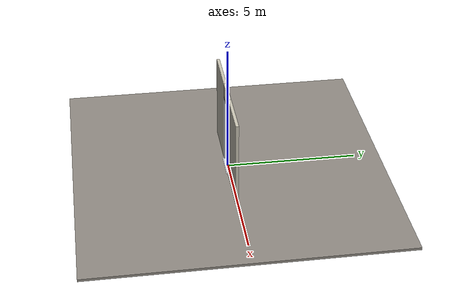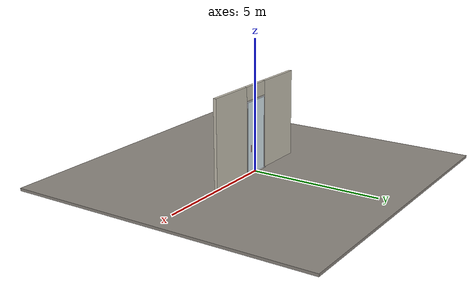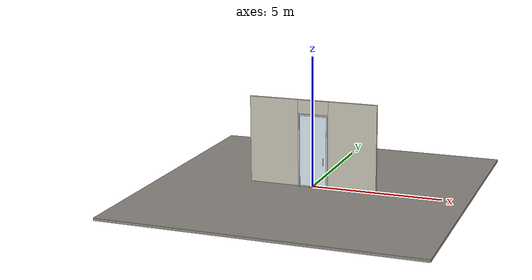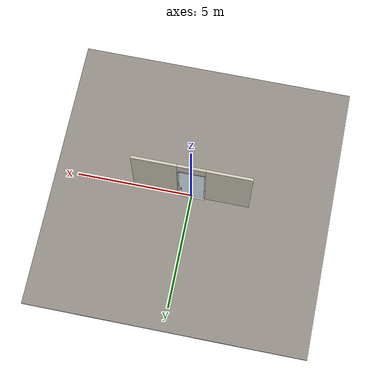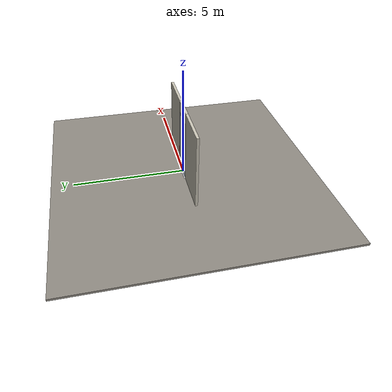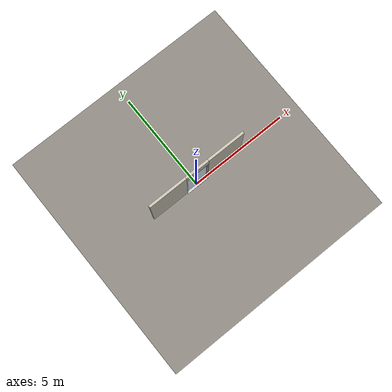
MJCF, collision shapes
<?xml version="1.0" ?>
<mujoco model="db0142_swing_single_minimal">
  <compiler angle="radian" meshdir="../../hardware" texturedir="../../textures" autolimits="true" inertiafromgeom="false"/>
  <option timestep="0.002" integrator="implicitfast" cone="elliptic" impratio="10" noslip_iterations="3">
    <flag multiccd="enable"/>
  </option>
  <size memory="16M"/>
  <default>
    <geom condim="4" solref="0.005 1" solimp="0.95 0.99 0.001"/>
    <joint solreflimit="0.005 1" solimplimit="0.95 0.99 0.001"/>
    <tendon solreflimit="0.005 1"/>
    <equality solref="0.002 1"/>
  </default>
  <visual>
    <headlight ambient="0.4 0.4 0.4" diffuse="0.7 0.7 0.7" specular="0.2 0.2 0.2"/>
    <quality shadowsize="4096"/>
    <map znear="0.01" zfar="60"/>
  </visual>
  <asset>
    <mesh name="pull_f8d79d6331" file="pull_f8d79d6331.obj"/>
    <material name="mat_floor" rgba="0.55 0.53 0.5 1" specular="0.2" shininess="0.15" reflectance="0"/>
    <material name="mat_wall" rgba="0.78 0.76 0.7 1" specular="0.2" shininess="0.1" reflectance="0"/>
    <material name="mat_leaf" rgba="0.85 0.92 0.95 0.25" specular="0.2" shininess="0.95" reflectance="0.1"/>
    <material name="mat_glass_leaf" rgba="0.85 0.92 0.95 0.25" specular="0.2" shininess="0.95" reflectance="0.1"/>
    <material name="mat_patch" rgba="0.75 0.76 0.77 1" specular="0.8" shininess="0.65" reflectance="0.4"/>
    <material name="mat_hinge" rgba="0.65 0.66 0.68 1" specular="0.74" shininess="0.5" reflectance="0.36"/>
    <material name="mat_op_stainless" rgba="0.75 0.76 0.77 1" specular="0.8" shininess="0.65" reflectance="0.4"/>
    <material name="mat_frame" rgba="0.8 0.81 0.83 1" specular="0.8" shininess="0.6" reflectance="0.4"/>
    <material name="mat_seal" rgba="0.1 0.1 0.1 1" specular="0.2" shininess="0.1" reflectance="0"/>
    <material name="mat_threshold" rgba="0.8 0.81 0.83 1" specular="0.8" shininess="0.6" reflectance="0.4"/>
    <material name="mat_closer" rgba="0.22 0.17 0.13 1" specular="0.8" shininess="0.6" reflectance="0.4"/>
    <material name="mat_exit_sign" rgba="0.85 0.1 0.1 1" specular="0.2" shininess="0.6" reflectance="0"/>
    <material name="mat_sign_bracket" rgba="0.8 0.81 0.83 1" specular="0.8" shininess="0.6" reflectance="0.4"/>
    <material name="mat_sign" rgba="0.75 0.76 0.77 1" specular="0.8" shininess="0.65" reflectance="0.4"/>
    <material name="mat_wallreader" rgba="0.05 0.05 0.05 1" specular="0.38" shininess="0.3" reflectance="0.12"/>
    <texture name="skybox" type="skybox" builtin="gradient" rgb1="0.6 0.7 0.85" rgb2="0.9 0.92 0.95" width="256" height="256"/>
  </asset>
  <worldbody>
    <light name="sun" pos="1.5 -2.5 4" dir="-0.3 0.5 -0.8" directional="true" diffuse="0.8 0.8 0.8" specular="0.3 0.3 0.3" castshadow="true"/>
    <light name="fill" pos="-1.5 2.5 3" dir="0.3 -0.5 -0.7" directional="true" diffuse="0.35 0.35 0.4" castshadow="false"/>
    <camera name="robot_view" pos="0 -3.23675 2.27645" xyaxes="1 0 0 0 0.26963 0.962964" fovy="52"/>
    <camera name="far_view" pos="0 3.18075 2.27645" xyaxes="-1 0 0 0 -0.26963 0.962964" fovy="52"/>
    <camera name="iso" pos="2.43865 -2.72335 2.78985" xyaxes="0.741536 0.670913 0 -0.242917 0.268487 0.932151" fovy="46"/>
    <camera name="detail_handle" pos="0.608 -0.8975 1.296" xyaxes="0.97561 0.219512 0 -0.070934 0.315262 0.94635" fovy="38"/>
    <geom name="floor" type="box" size="6 6 0.05" pos="0 0 -0.05" material="mat_floor" group="0" contype="1" conaffinity="1" friction="0.8 0.005 0.0001" density="2400"/>
    <geom name="wall_left" type="box" size="0.959 0.0575 1.678" pos="-1.541 -0.028 1.678" material="mat_wall" group="0" contype="1" conaffinity="1" friction="0.6 0.005 0.0001" density="800"/>
    <geom name="wall_right" type="box" size="0.944 0.0575 1.678" pos="1.556 -0.028 1.678" material="mat_wall" group="0" contype="1" conaffinity="1" friction="0.6 0.005 0.0001" density="800"/>
    <geom name="wall_header" type="box" size="0.597 0.0575 0.2625" pos="0.015 -0.028 3.0935" material="mat_wall" group="0" contype="1" conaffinity="1" friction="0.6 0.005 0.0001" density="800"/>
    <geom name="jamb_hinge" type="box" size="0.0225 0.0575 1.378" pos="-0.5595 -0.028 1.378" material="mat_frame" group="0" contype="1" conaffinity="1" friction="0.6 0.005 0.0001" density="300"/>
    <geom name="jamb_strike" type="box" size="0.0225 0.0575 1.378" pos="0.5595 -0.028 1.378" material="mat_frame" group="0" contype="1" conaffinity="1" friction="0.6 0.005 0.0001" density="300"/>
    <geom name="stud_strike" type="box" size="0.015 0.0575 1.378" pos="0.597 -0.028 1.378" material="mat_wall" group="0" contype="1" conaffinity="1" friction="0.6 0.005 0.0001" density="500"/>
    <geom name="jamb_head" type="box" size="0.597 0.0575 0.0225" pos="0.015 -0.028 2.7785" material="mat_frame" group="0" contype="1" conaffinity="1" friction="0.6 0.005 0.0001" density="300"/>
    <geom name="head_stud" type="box" size="0.597 0.0575 0.015" pos="0.015 -0.028 2.816" material="mat_wall" group="0" contype="1" conaffinity="1" friction="0.6 0.005 0.0001" density="500"/>
    <geom name="stop_hinge" type="box" size="0.0055 0.016 1.378" pos="-0.5315 -0.039 1.378" material="mat_frame" group="0" contype="1" conaffinity="1" friction="0.6 0.005 0.0001" density="300"/>
    <geom name="stop_strike" type="box" size="0.0055 0.016 1.378" pos="0.5315 -0.039 1.378" material="mat_frame" group="0" contype="1" conaffinity="1" friction="0.6 0.005 0.0001" density="300"/>
    <geom name="stop_head" type="box" size="0.537 0.016 0.0055" pos="0 -0.039 2.7505" material="mat_frame" group="0" contype="1" conaffinity="1" friction="0.6 0.005 0.0001" density="300"/>
    <geom name="threshold" type="box" size="0.582 0.1075 0.004" pos="0 -0.028 0.004" material="mat_threshold" group="0" contype="1" conaffinity="1" friction="0.6 0.005 0.0001" density="2700"/>
    <site name="approach_point" pos="0 -1.5 0" quat="1 0 0 0" size="0.05" rgba="0.2 0.9 0.2 0.5" group="4"/>
    <site name="goal_point" pos="0 1.5 0" quat="1 0 0 0" size="0.05" rgba="0.2 0.9 0.2 0.5" group="4"/>
    <site name="door_plane_center" pos="0 0 1.378" quat="1 0 0 0" size="0.02" rgba="0.2 0.9 0.2 0.5" group="4"/>
    <body name="leaf" pos="-0.537 0 0">
      <inertial pos="0.545183 0 1.373114" mass="145.794239" quat="0.501487 0.501487 0.498508 -0.498508" diaginertia="14.129029309 90.020254467 104.052662116"/>
      <joint name="leaf_hinge" type="hinge" axis="0 0 1" pos="0.003 0.0295 0" limited="true" range="0 1.570796" solreflimit="0.02 1" damping="10.642098" frictionloss="4.916616" stiffness="46.556004" springref="-2.354584" armature="0.02"/>
      <geom name="leaf_glass" type="box" size="0.5335 0.0225 1.3715" pos="0.5365 0 1.3805" material="mat_glass_leaf" group="0" contype="1" conaffinity="1" friction="0.4 0.005 0.0001" density="1"/>
      <geom name="leaf_pull_n" type="mesh" mesh="pull_f8d79d6331" pos="0.965 -0.0225 1.016" quat="0.707107 0.707107 0 0" material="mat_op_stainless" group="1" contype="0" conaffinity="0" density="3000"/>
      <geom name="leaf_pull_col_n" type="capsule" size="0.0125 0.13" pos="0.965 -0.0975 1.016" material="mat_op_stainless" group="3" contype="1" conaffinity="1" rgba="0.8 0.3 0.3 0.25" friction="0.7 0.01 0.0001" density="3000"/>
      <geom name="leaf_pull_p" type="mesh" mesh="pull_f8d79d6331" pos="0.965 0.0225 1.016" quat="-0.707107 0.707107 0 0" material="mat_op_stainless" group="1" contype="0" conaffinity="0" density="3000"/>
      <geom name="leaf_pull_col_p" type="capsule" size="0.0125 0.13" pos="0.965 0.0975 1.016" material="mat_op_stainless" group="3" contype="1" conaffinity="1" rgba="0.8 0.3 0.3 0.25" friction="0.7 0.01 0.0001" density="3000"/>
      <site name="leaf_pull_grip_n" pos="0.965 -0.0975 1.016" quat="1 0 0 0" size="0.012" rgba="0.2 0.9 0.2 0.5" group="4"/>
      <site name="leaf_pull_grip_p" pos="0.965 0.0975 1.016" quat="1 0 0 0" size="0.012" rgba="0.2 0.9 0.2 0.5" group="4"/>
      <site name="leaf_edge_mid" pos="1.07 0 1.3715" quat="1 0 0 0" size="0.02" rgba="0.2 0.9 0.2 0.5" group="4"/>
    </body>
  </worldbody>
  <sensor>
    <jointpos name="leaf_hinge_pos" joint="leaf_hinge"/>
    <jointvel name="leaf_hinge_vel" joint="leaf_hinge"/>
  </sensor>
</mujoco>
